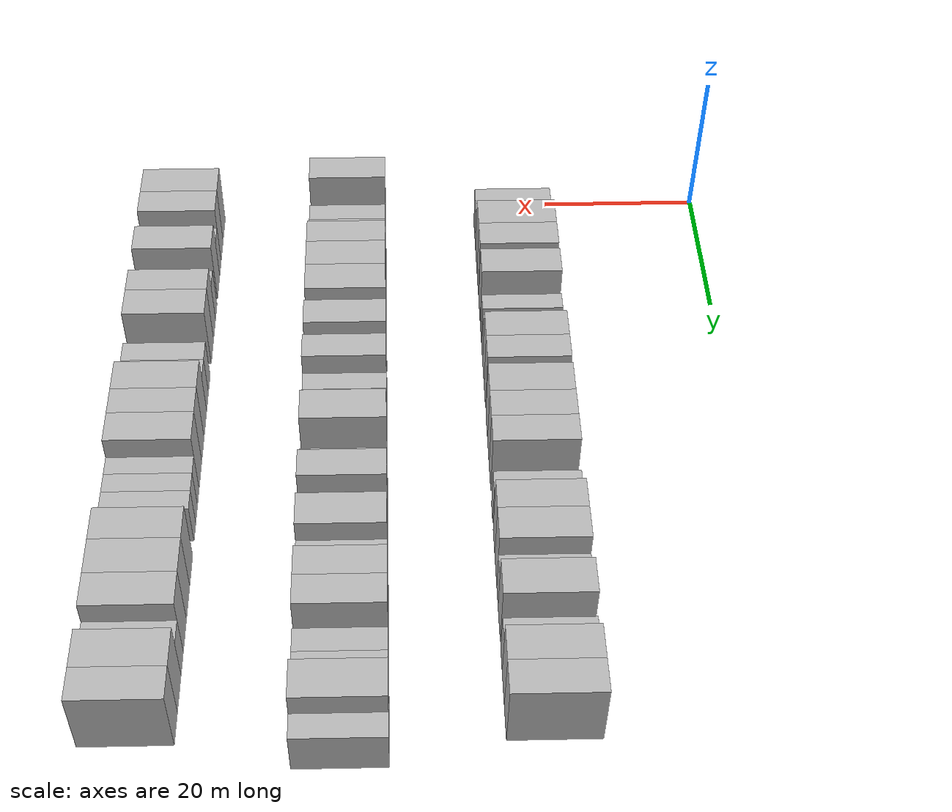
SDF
<sdf version="1.6">
 <world name="default">
  <model name="building_62">
   <static>1</static>
   <pose>25.0000 4.8385 0 0.000000 0.000000 0.000000</pose>
   <link name="link">
    <pose>0 0 3.00 0 0 0</pose>
    <collision name="collision"><geometry><box><size>10.0000 2.8597 6.0000</size></box></geometry></collision>
    <visual name="visual">
     <cast_shadows>0</cast_shadows>
     <geometry><box><size>10.0000 2.8597 6.0000</size></box></geometry>
     <material>
      <script>
       <uri>model://HANNAS_wall/materials/scripts</uri>
       <uri>model://HANNAS_wall/materials/textures</uri>
       <name>vrc/HANNAS_wall</name>
      </script>
     </material>
    </visual>
   </link>
  </model>
  <model name="building_63">
   <static>1</static>
   <pose>25.0000 7.7347 0 0.000000 0.000000 0.000000</pose>
   <link name="link">
    <pose>0 0 3.00 0 0 0</pose>
    <collision name="collision"><geometry><box><size>10.0000 2.9326 6.0000</size></box></geometry></collision>
    <visual name="visual">
     <cast_shadows>0</cast_shadows>
     <geometry><box><size>10.0000 2.9326 6.0000</size></box></geometry>
     <material>
      <script>
       <uri>model://HANNAS_wall/materials/scripts</uri>
       <uri>model://HANNAS_wall/materials/textures</uri>
       <name>vrc/HANNAS_wall</name>
      </script>
     </material>
    </visual>
   </link>
  </model>
  <model name="building_64">
   <static>1</static>
   <pose>25.0000 11.3584 0 0.000000 0.000000 0.000000</pose>
   <link name="link">
    <pose>0 0 4.50 0 0 0</pose>
    <collision name="collision"><geometry><box><size>10.0000 4.3148 9.0000</size></box></geometry></collision>
    <visual name="visual">
     <cast_shadows>0</cast_shadows>
     <geometry><box><size>10.0000 4.3148 9.0000</size></box></geometry>
     <material>
      <script>
       <uri>model://HANNAS_wall/materials/scripts</uri>
       <uri>model://HANNAS_wall/materials/textures</uri>
       <name>vrc/HANNAS_wall</name>
      </script>
     </material>
    </visual>
   </link>
  </model>
  <model name="building_65">
   <static>1</static>
   <pose>25.0000 15.4725 0 0.000000 0.000000 0.000000</pose>
   <link name="link">
    <pose>0 0 4.50 0 0 0</pose>
    <collision name="collision"><geometry><box><size>10.0000 3.9134 9.0000</size></box></geometry></collision>
    <visual name="visual">
     <cast_shadows>0</cast_shadows>
     <geometry><box><size>10.0000 3.9134 9.0000</size></box></geometry>
     <material>
      <script>
       <uri>model://HANNAS_wall/materials/scripts</uri>
       <uri>model://HANNAS_wall/materials/textures</uri>
       <name>vrc/HANNAS_wall</name>
      </script>
     </material>
    </visual>
   </link>
  </model>
  <model name="building_66">
   <static>1</static>
   <pose>25.0000 20.5150 0 0.000000 0.000000 0.000000</pose>
   <link name="link">
    <pose>0 0 4.50 0 0 0</pose>
    <collision name="collision"><geometry><box><size>10.0000 4.1715 9.0000</size></box></geometry></collision>
    <visual name="visual">
     <cast_shadows>0</cast_shadows>
     <geometry><box><size>10.0000 4.1715 9.0000</size></box></geometry>
     <material>
      <script>
       <uri>model://HANNAS_wall/materials/scripts</uri>
       <uri>model://HANNAS_wall/materials/textures</uri>
       <name>vrc/HANNAS_wall</name>
      </script>
     </material>
    </visual>
   </link>
  </model>
  <model name="building_67">
   <static>1</static>
   <pose>25.0000 24.8440 0 0.000000 0.000000 0.000000</pose>
   <link name="link">
    <pose>0 0 3.00 0 0 0</pose>
    <collision name="collision"><geometry><box><size>10.0000 2.4864 6.0000</size></box></geometry></collision>
    <visual name="visual">
     <cast_shadows>0</cast_shadows>
     <geometry><box><size>10.0000 2.4864 6.0000</size></box></geometry>
     <material>
      <script>
       <uri>model://HANNAS_wall/materials/scripts</uri>
       <uri>model://HANNAS_wall/materials/textures</uri>
       <name>vrc/HANNAS_wall</name>
      </script>
     </material>
    </visual>
   </link>
  </model>
  <model name="building_68">
   <static>1</static>
   <pose>25.0000 28.3277 0 0.000000 0.000000 0.000000</pose>
   <link name="link">
    <pose>0 0 3.00 0 0 0</pose>
    <collision name="collision"><geometry><box><size>10.0000 2.4811 6.0000</size></box></geometry></collision>
    <visual name="visual">
     <cast_shadows>0</cast_shadows>
     <geometry><box><size>10.0000 2.4811 6.0000</size></box></geometry>
     <material>
      <script>
       <uri>model://HANNAS_wall/materials/scripts</uri>
       <uri>model://HANNAS_wall/materials/textures</uri>
       <name>vrc/HANNAS_wall</name>
      </script>
     </material>
    </visual>
   </link>
  </model>
  <model name="building_69">
   <static>1</static>
   <pose>25.0000 31.5768 0 0.000000 0.000000 0.000000</pose>
   <link name="link">
    <pose>0 0 4.50 0 0 0</pose>
    <collision name="collision"><geometry><box><size>10.0000 4.0170 9.0000</size></box></geometry></collision>
    <visual name="visual">
     <cast_shadows>0</cast_shadows>
     <geometry><box><size>10.0000 4.0170 9.0000</size></box></geometry>
     <material>
      <script>
       <uri>model://HANNAS_wall/materials/scripts</uri>
       <uri>model://HANNAS_wall/materials/textures</uri>
       <name>vrc/HANNAS_wall</name>
      </script>
     </material>
    </visual>
   </link>
  </model>
  <model name="building_70">
   <static>1</static>
   <pose>25.0000 35.3910 0 0.000000 0.000000 0.000000</pose>
   <link name="link">
    <pose>0 0 4.50 0 0 0</pose>
    <collision name="collision"><geometry><box><size>10.0000 3.6114 9.0000</size></box></geometry></collision>
    <visual name="visual">
     <cast_shadows>0</cast_shadows>
     <geometry><box><size>10.0000 3.6114 9.0000</size></box></geometry>
     <material>
      <script>
       <uri>model://HANNAS_wall/materials/scripts</uri>
       <uri>model://HANNAS_wall/materials/textures</uri>
       <name>vrc/HANNAS_wall</name>
      </script>
     </material>
    </visual>
   </link>
  </model>
  <model name="building_71">
   <static>1</static>
   <pose>25.0000 40.3313 0 0.000000 0.000000 0.000000</pose>
   <link name="link">
    <pose>0 0 4.50 0 0 0</pose>
    <collision name="collision"><geometry><box><size>10.0000 4.2693 9.0000</size></box></geometry></collision>
    <visual name="visual">
     <cast_shadows>0</cast_shadows>
     <geometry><box><size>10.0000 4.2693 9.0000</size></box></geometry>
     <material>
      <script>
       <uri>model://HANNAS_wall/materials/scripts</uri>
       <uri>model://HANNAS_wall/materials/textures</uri>
       <name>vrc/HANNAS_wall</name>
      </script>
     </material>
    </visual>
   </link>
  </model>
  <model name="building_72">
   <static>1</static>
   <pose>25.0000 44.3819 0 0.000000 0.000000 0.000000</pose>
   <link name="link">
    <pose>0 0 4.50 0 0 0</pose>
    <collision name="collision"><geometry><box><size>10.0000 3.8319 9.0000</size></box></geometry></collision>
    <visual name="visual">
     <cast_shadows>0</cast_shadows>
     <geometry><box><size>10.0000 3.8319 9.0000</size></box></geometry>
     <material>
      <script>
       <uri>model://HANNAS_wall/materials/scripts</uri>
       <uri>model://HANNAS_wall/materials/textures</uri>
       <name>vrc/HANNAS_wall</name>
      </script>
     </material>
    </visual>
   </link>
  </model>
  <model name="building_73">
   <static>1</static>
   <pose>25.0000 48.1872 0 0.000000 0.000000 0.000000</pose>
   <link name="link">
    <pose>0 0 4.50 0 0 0</pose>
    <collision name="collision"><geometry><box><size>10.0000 3.7786 9.0000</size></box></geometry></collision>
    <visual name="visual">
     <cast_shadows>0</cast_shadows>
     <geometry><box><size>10.0000 3.7786 9.0000</size></box></geometry>
     <material>
      <script>
       <uri>model://HANNAS_wall/materials/scripts</uri>
       <uri>model://HANNAS_wall/materials/textures</uri>
       <name>vrc/HANNAS_wall</name>
      </script>
     </material>
    </visual>
   </link>
  </model>
  <model name="building_74">
   <static>1</static>
   <pose>25.0000 53.4099 0 0.000000 0.000000 0.000000</pose>
   <link name="link">
    <pose>0 0 3.00 0 0 0</pose>
    <collision name="collision"><geometry><box><size>10.0000 2.6668 6.0000</size></box></geometry></collision>
    <visual name="visual">
     <cast_shadows>0</cast_shadows>
     <geometry><box><size>10.0000 2.6668 6.0000</size></box></geometry>
     <material>
      <script>
       <uri>model://HANNAS_wall/materials/scripts</uri>
       <uri>model://HANNAS_wall/materials/textures</uri>
       <name>vrc/HANNAS_wall</name>
      </script>
     </material>
    </visual>
   </link>
  </model>
  <model name="building_75">
   <static>1</static>
   <pose>25.0000 57.6480 0 0.000000 0.000000 0.000000</pose>
   <link name="link">
    <pose>0 0 4.50 0 0 0</pose>
    <collision name="collision"><geometry><box><size>10.0000 3.8094 9.0000</size></box></geometry></collision>
    <visual name="visual">
     <cast_shadows>0</cast_shadows>
     <geometry><box><size>10.0000 3.8094 9.0000</size></box></geometry>
     <material>
      <script>
       <uri>model://HANNAS_wall/materials/scripts</uri>
       <uri>model://HANNAS_wall/materials/textures</uri>
       <name>vrc/HANNAS_wall</name>
      </script>
     </material>
    </visual>
   </link>
  </model>
  <model name="building_76">
   <static>1</static>
   <pose>25.0000 61.6300 0 0.000000 0.000000 0.000000</pose>
   <link name="link">
    <pose>0 0 4.50 0 0 0</pose>
    <collision name="collision"><geometry><box><size>10.0000 4.1546 9.0000</size></box></geometry></collision>
    <visual name="visual">
     <cast_shadows>0</cast_shadows>
     <geometry><box><size>10.0000 4.1546 9.0000</size></box></geometry>
     <material>
      <script>
       <uri>model://HANNAS_wall/materials/scripts</uri>
       <uri>model://HANNAS_wall/materials/textures</uri>
       <name>vrc/HANNAS_wall</name>
      </script>
     </material>
    </visual>
   </link>
  </model>
  <model name="building_77">
   <static>1</static>
   <pose>25.0000 65.0552 0 0.000000 0.000000 0.000000</pose>
   <link name="link">
    <pose>0 0 3.00 0 0 0</pose>
    <collision name="collision"><geometry><box><size>10.0000 2.6957 6.0000</size></box></geometry></collision>
    <visual name="visual">
     <cast_shadows>0</cast_shadows>
     <geometry><box><size>10.0000 2.6957 6.0000</size></box></geometry>
     <material>
      <script>
       <uri>model://HANNAS_wall/materials/scripts</uri>
       <uri>model://HANNAS_wall/materials/textures</uri>
       <name>vrc/HANNAS_wall</name>
      </script>
     </material>
    </visual>
   </link>
  </model>
  <model name="building_78">
   <static>1</static>
   <pose>25.0000 68.6142 0 0.000000 0.000000 0.000000</pose>
   <link name="link">
    <pose>0 0 4.50 0 0 0</pose>
    <collision name="collision"><geometry><box><size>10.0000 4.4223 9.0000</size></box></geometry></collision>
    <visual name="visual">
     <cast_shadows>0</cast_shadows>
     <geometry><box><size>10.0000 4.4223 9.0000</size></box></geometry>
     <material>
      <script>
       <uri>model://HANNAS_wall/materials/scripts</uri>
       <uri>model://HANNAS_wall/materials/textures</uri>
       <name>vrc/HANNAS_wall</name>
      </script>
     </material>
    </visual>
   </link>
  </model>
  <model name="building_79">
   <static>1</static>
   <pose>25.0000 73.2678 0 0.000000 0.000000 0.000000</pose>
   <link name="link">
    <pose>0 0 3.00 0 0 0</pose>
    <collision name="collision"><geometry><box><size>10.0000 2.8849 6.0000</size></box></geometry></collision>
    <visual name="visual">
     <cast_shadows>0</cast_shadows>
     <geometry><box><size>10.0000 2.8849 6.0000</size></box></geometry>
     <material>
      <script>
       <uri>model://HANNAS_wall/materials/scripts</uri>
       <uri>model://HANNAS_wall/materials/textures</uri>
       <name>vrc/HANNAS_wall</name>
      </script>
     </material>
    </visual>
   </link>
  </model>
  <model name="building_80">
   <static>1</static>
   <pose>25.0000 76.7504 0 0.000000 0.000000 0.000000</pose>
   <link name="link">
    <pose>0 0 4.50 0 0 0</pose>
    <collision name="collision"><geometry><box><size>10.0000 4.0803 9.0000</size></box></geometry></collision>
    <visual name="visual">
     <cast_shadows>0</cast_shadows>
     <geometry><box><size>10.0000 4.0803 9.0000</size></box></geometry>
     <material>
      <script>
       <uri>model://HANNAS_wall/materials/scripts</uri>
       <uri>model://HANNAS_wall/materials/textures</uri>
       <name>vrc/HANNAS_wall</name>
      </script>
     </material>
    </visual>
   </link>
  </model>
  <model name="building_81">
   <static>1</static>
   <pose>25.0000 80.7810 0 0.000000 0.000000 0.000000</pose>
   <link name="link">
    <pose>0 0 4.50 0 0 0</pose>
    <collision name="collision"><geometry><box><size>10.0000 3.9807 9.0000</size></box></geometry></collision>
    <visual name="visual">
     <cast_shadows>0</cast_shadows>
     <geometry><box><size>10.0000 3.9807 9.0000</size></box></geometry>
     <material>
      <script>
       <uri>model://HANNAS_wall/materials/scripts</uri>
       <uri>model://HANNAS_wall/materials/textures</uri>
       <name>vrc/HANNAS_wall</name>
      </script>
     </material>
    </visual>
   </link>
  </model>
  <model name="building_191">
   <static>1</static>
   <pose>47.0000 2.1717 0 0.000000 0.000000 0.000000</pose>
   <link name="link">
    <pose>0 0 4.50 0 0 0</pose>
    <collision name="collision"><geometry><box><size>10.0000 4.1198 9.0000</size></box></geometry></collision>
    <visual name="visual">
     <cast_shadows>0</cast_shadows>
     <geometry><box><size>10.0000 4.1198 9.0000</size></box></geometry>
     <material>
      <script>
       <uri>model://HANNAS_wall/materials/scripts</uri>
       <uri>model://HANNAS_wall/materials/textures</uri>
       <name>vrc/HANNAS_wall</name>
      </script>
     </material>
    </visual>
   </link>
  </model>
  <model name="building_192">
   <static>1</static>
   <pose>47.0000 7.6280 0 0.000000 0.000000 0.000000</pose>
   <link name="link">
    <pose>0 0 3.00 0 0 0</pose>
    <collision name="collision"><geometry><box><size>10.0000 2.7928 6.0000</size></box></geometry></collision>
    <visual name="visual">
     <cast_shadows>0</cast_shadows>
     <geometry><box><size>10.0000 2.7928 6.0000</size></box></geometry>
     <material>
      <script>
       <uri>model://HANNAS_wall/materials/scripts</uri>
       <uri>model://HANNAS_wall/materials/textures</uri>
       <name>vrc/HANNAS_wall</name>
      </script>
     </material>
    </visual>
   </link>
  </model>
  <model name="building_193">
   <static>1</static>
   <pose>47.0000 10.3833 0 0.000000 0.000000 0.000000</pose>
   <link name="link">
    <pose>0 0 3.00 0 0 0</pose>
    <collision name="collision"><geometry><box><size>10.0000 2.7179 6.0000</size></box></geometry></collision>
    <visual name="visual">
     <cast_shadows>0</cast_shadows>
     <geometry><box><size>10.0000 2.7179 6.0000</size></box></geometry>
     <material>
      <script>
       <uri>model://HANNAS_wall/materials/scripts</uri>
       <uri>model://HANNAS_wall/materials/textures</uri>
       <name>vrc/HANNAS_wall</name>
      </script>
     </material>
    </visual>
   </link>
  </model>
  <model name="building_194">
   <static>1</static>
   <pose>47.0000 14.6315 0 0.000000 0.000000 0.000000</pose>
   <link name="link">
    <pose>0 0 4.50 0 0 0</pose>
    <collision name="collision"><geometry><box><size>10.0000 3.7785 9.0000</size></box></geometry></collision>
    <visual name="visual">
     <cast_shadows>0</cast_shadows>
     <geometry><box><size>10.0000 3.7785 9.0000</size></box></geometry>
     <material>
      <script>
       <uri>model://HANNAS_wall/materials/scripts</uri>
       <uri>model://HANNAS_wall/materials/textures</uri>
       <name>vrc/HANNAS_wall</name>
      </script>
     </material>
    </visual>
   </link>
  </model>
  <model name="building_195">
   <static>1</static>
   <pose>47.0000 18.6408 0 0.000000 0.000000 0.000000</pose>
   <link name="link">
    <pose>0 0 4.50 0 0 0</pose>
    <collision name="collision"><geometry><box><size>10.0000 4.2400 9.0000</size></box></geometry></collision>
    <visual name="visual">
     <cast_shadows>0</cast_shadows>
     <geometry><box><size>10.0000 4.2400 9.0000</size></box></geometry>
     <material>
      <script>
       <uri>model://HANNAS_wall/materials/scripts</uri>
       <uri>model://HANNAS_wall/materials/textures</uri>
       <name>vrc/HANNAS_wall</name>
      </script>
     </material>
    </visual>
   </link>
  </model>
  <model name="building_196">
   <static>1</static>
   <pose>47.0000 22.9386 0 0.000000 0.000000 0.000000</pose>
   <link name="link">
    <pose>0 0 4.50 0 0 0</pose>
    <collision name="collision"><geometry><box><size>10.0000 4.3556 9.0000</size></box></geometry></collision>
    <visual name="visual">
     <cast_shadows>0</cast_shadows>
     <geometry><box><size>10.0000 4.3556 9.0000</size></box></geometry>
     <material>
      <script>
       <uri>model://HANNAS_wall/materials/scripts</uri>
       <uri>model://HANNAS_wall/materials/textures</uri>
       <name>vrc/HANNAS_wall</name>
      </script>
     </material>
    </visual>
   </link>
  </model>
  <model name="building_197">
   <static>1</static>
   <pose>47.0000 29.0506 0 0.000000 0.000000 0.000000</pose>
   <link name="link">
    <pose>0 0 4.50 0 0 0</pose>
    <collision name="collision"><geometry><box><size>10.0000 3.8685 9.0000</size></box></geometry></collision>
    <visual name="visual">
     <cast_shadows>0</cast_shadows>
     <geometry><box><size>10.0000 3.8685 9.0000</size></box></geometry>
     <material>
      <script>
       <uri>model://HANNAS_wall/materials/scripts</uri>
       <uri>model://HANNAS_wall/materials/textures</uri>
       <name>vrc/HANNAS_wall</name>
      </script>
     </material>
    </visual>
   </link>
  </model>
  <model name="building_198">
   <static>1</static>
   <pose>47.0000 34.7867 0 0.000000 0.000000 0.000000</pose>
   <link name="link">
    <pose>0 0 4.50 0 0 0</pose>
    <collision name="collision"><geometry><box><size>10.0000 3.6037 9.0000</size></box></geometry></collision>
    <visual name="visual">
     <cast_shadows>0</cast_shadows>
     <geometry><box><size>10.0000 3.6037 9.0000</size></box></geometry>
     <material>
      <script>
       <uri>model://HANNAS_wall/materials/scripts</uri>
       <uri>model://HANNAS_wall/materials/textures</uri>
       <name>vrc/HANNAS_wall</name>
      </script>
     </material>
    </visual>
   </link>
  </model>
  <model name="building_199">
   <static>1</static>
   <pose>47.0000 37.8655 0 0.000000 0.000000 0.000000</pose>
   <link name="link">
    <pose>0 0 3.00 0 0 0</pose>
    <collision name="collision"><geometry><box><size>10.0000 2.5539 6.0000</size></box></geometry></collision>
    <visual name="visual">
     <cast_shadows>0</cast_shadows>
     <geometry><box><size>10.0000 2.5539 6.0000</size></box></geometry>
     <material>
      <script>
       <uri>model://HANNAS_wall/materials/scripts</uri>
       <uri>model://HANNAS_wall/materials/textures</uri>
       <name>vrc/HANNAS_wall</name>
      </script>
     </material>
    </visual>
   </link>
  </model>
  <model name="building_200">
   <static>1</static>
   <pose>47.0000 40.5393 0 0.000000 0.000000 0.000000</pose>
   <link name="link">
    <pose>0 0 3.00 0 0 0</pose>
    <collision name="collision"><geometry><box><size>10.0000 2.7936 6.0000</size></box></geometry></collision>
    <visual name="visual">
     <cast_shadows>0</cast_shadows>
     <geometry><box><size>10.0000 2.7936 6.0000</size></box></geometry>
     <material>
      <script>
       <uri>model://HANNAS_wall/materials/scripts</uri>
       <uri>model://HANNAS_wall/materials/textures</uri>
       <name>vrc/HANNAS_wall</name>
      </script>
     </material>
    </visual>
   </link>
  </model>
  <model name="building_201">
   <static>1</static>
   <pose>47.0000 44.1117 0 0.000000 0.000000 0.000000</pose>
   <link name="link">
    <pose>0 0 4.50 0 0 0</pose>
    <collision name="collision"><geometry><box><size>10.0000 4.3513 9.0000</size></box></geometry></collision>
    <visual name="visual">
     <cast_shadows>0</cast_shadows>
     <geometry><box><size>10.0000 4.3513 9.0000</size></box></geometry>
     <material>
      <script>
       <uri>model://HANNAS_wall/materials/scripts</uri>
       <uri>model://HANNAS_wall/materials/textures</uri>
       <name>vrc/HANNAS_wall</name>
      </script>
     </material>
    </visual>
   </link>
  </model>
  <model name="building_202">
   <static>1</static>
   <pose>47.0000 49.6158 0 0.000000 0.000000 0.000000</pose>
   <link name="link">
    <pose>0 0 3.00 0 0 0</pose>
    <collision name="collision"><geometry><box><size>10.0000 2.6568 6.0000</size></box></geometry></collision>
    <visual name="visual">
     <cast_shadows>0</cast_shadows>
     <geometry><box><size>10.0000 2.6568 6.0000</size></box></geometry>
     <material>
      <script>
       <uri>model://HANNAS_wall/materials/scripts</uri>
       <uri>model://HANNAS_wall/materials/textures</uri>
       <name>vrc/HANNAS_wall</name>
      </script>
     </material>
    </visual>
   </link>
  </model>
  <model name="building_203">
   <static>1</static>
   <pose>47.0000 52.8092 0 0.000000 0.000000 0.000000</pose>
   <link name="link">
    <pose>0 0 4.50 0 0 0</pose>
    <collision name="collision"><geometry><box><size>10.0000 3.7300 9.0000</size></box></geometry></collision>
    <visual name="visual">
     <cast_shadows>0</cast_shadows>
     <geometry><box><size>10.0000 3.7300 9.0000</size></box></geometry>
     <material>
      <script>
       <uri>model://HANNAS_wall/materials/scripts</uri>
       <uri>model://HANNAS_wall/materials/textures</uri>
       <name>vrc/HANNAS_wall</name>
      </script>
     </material>
    </visual>
   </link>
  </model>
  <model name="building_204">
   <static>1</static>
   <pose>47.0000 55.8914 0 0.000000 0.000000 0.000000</pose>
   <link name="link">
    <pose>0 0 3.00 0 0 0</pose>
    <collision name="collision"><geometry><box><size>10.0000 2.4343 6.0000</size></box></geometry></collision>
    <visual name="visual">
     <cast_shadows>0</cast_shadows>
     <geometry><box><size>10.0000 2.4343 6.0000</size></box></geometry>
     <material>
      <script>
       <uri>model://HANNAS_wall/materials/scripts</uri>
       <uri>model://HANNAS_wall/materials/textures</uri>
       <name>vrc/HANNAS_wall</name>
      </script>
     </material>
    </visual>
   </link>
  </model>
  <model name="building_205">
   <static>1</static>
   <pose>47.0000 59.2299 0 0.000000 0.000000 0.000000</pose>
   <link name="link">
    <pose>0 0 4.50 0 0 0</pose>
    <collision name="collision"><geometry><box><size>10.0000 4.2428 9.0000</size></box></geometry></collision>
    <visual name="visual">
     <cast_shadows>0</cast_shadows>
     <geometry><box><size>10.0000 4.2428 9.0000</size></box></geometry>
     <material>
      <script>
       <uri>model://HANNAS_wall/materials/scripts</uri>
       <uri>model://HANNAS_wall/materials/textures</uri>
       <name>vrc/HANNAS_wall</name>
      </script>
     </material>
    </visual>
   </link>
  </model>
  <model name="building_206">
   <static>1</static>
   <pose>47.0000 62.8167 0 0.000000 0.000000 0.000000</pose>
   <link name="link">
    <pose>0 0 3.00 0 0 0</pose>
    <collision name="collision"><geometry><box><size>10.0000 2.9309 6.0000</size></box></geometry></collision>
    <visual name="visual">
     <cast_shadows>0</cast_shadows>
     <geometry><box><size>10.0000 2.9309 6.0000</size></box></geometry>
     <material>
      <script>
       <uri>model://HANNAS_wall/materials/scripts</uri>
       <uri>model://HANNAS_wall/materials/textures</uri>
       <name>vrc/HANNAS_wall</name>
      </script>
     </material>
    </visual>
   </link>
  </model>
  <model name="building_207">
   <static>1</static>
   <pose>47.0000 66.1249 0 0.000000 0.000000 0.000000</pose>
   <link name="link">
    <pose>0 0 4.50 0 0 0</pose>
    <collision name="collision"><geometry><box><size>10.0000 3.6854 9.0000</size></box></geometry></collision>
    <visual name="visual">
     <cast_shadows>0</cast_shadows>
     <geometry><box><size>10.0000 3.6854 9.0000</size></box></geometry>
     <material>
      <script>
       <uri>model://HANNAS_wall/materials/scripts</uri>
       <uri>model://HANNAS_wall/materials/textures</uri>
       <name>vrc/HANNAS_wall</name>
      </script>
     </material>
    </visual>
   </link>
  </model>
  <model name="building_208">
   <static>1</static>
   <pose>47.0000 69.8139 0 0.000000 0.000000 0.000000</pose>
   <link name="link">
    <pose>0 0 4.50 0 0 0</pose>
    <collision name="collision"><geometry><box><size>10.0000 3.6927 9.0000</size></box></geometry></collision>
    <visual name="visual">
     <cast_shadows>0</cast_shadows>
     <geometry><box><size>10.0000 3.6927 9.0000</size></box></geometry>
     <material>
      <script>
       <uri>model://HANNAS_wall/materials/scripts</uri>
       <uri>model://HANNAS_wall/materials/textures</uri>
       <name>vrc/HANNAS_wall</name>
      </script>
     </material>
    </visual>
   </link>
  </model>
  <model name="building_209">
   <static>1</static>
   <pose>47.0000 74.0758 0 0.000000 0.000000 0.000000</pose>
   <link name="link">
    <pose>0 0 3.00 0 0 0</pose>
    <collision name="collision"><geometry><box><size>10.0000 2.8311 6.0000</size></box></geometry></collision>
    <visual name="visual">
     <cast_shadows>0</cast_shadows>
     <geometry><box><size>10.0000 2.8311 6.0000</size></box></geometry>
     <material>
      <script>
       <uri>model://HANNAS_wall/materials/scripts</uri>
       <uri>model://HANNAS_wall/materials/textures</uri>
       <name>vrc/HANNAS_wall</name>
      </script>
     </material>
    </visual>
   </link>
  </model>
  <model name="building_210">
   <static>1</static>
   <pose>47.0000 76.8986 0 0.000000 0.000000 0.000000</pose>
   <link name="link">
    <pose>0 0 3.00 0 0 0</pose>
    <collision name="collision"><geometry><box><size>10.0000 2.8146 6.0000</size></box></geometry></collision>
    <visual name="visual">
     <cast_shadows>0</cast_shadows>
     <geometry><box><size>10.0000 2.8146 6.0000</size></box></geometry>
     <material>
      <script>
       <uri>model://HANNAS_wall/materials/scripts</uri>
       <uri>model://HANNAS_wall/materials/textures</uri>
       <name>vrc/HANNAS_wall</name>
      </script>
     </material>
    </visual>
   </link>
  </model>
  <model name="building_211">
   <static>1</static>
   <pose>47.0000 80.5304 0 0.000000 0.000000 0.000000</pose>
   <link name="link">
    <pose>0 0 4.50 0 0 0</pose>
    <collision name="collision"><geometry><box><size>10.0000 4.4489 9.0000</size></box></geometry></collision>
    <visual name="visual">
     <cast_shadows>0</cast_shadows>
     <geometry><box><size>10.0000 4.4489 9.0000</size></box></geometry>
     <material>
      <script>
       <uri>model://HANNAS_wall/materials/scripts</uri>
       <uri>model://HANNAS_wall/materials/textures</uri>
       <name>vrc/HANNAS_wall</name>
      </script>
     </material>
    </visual>
   </link>
  </model>
  <model name="building_212">
   <static>1</static>
   <pose>47.0000 84.1670 0 0.000000 0.000000 0.000000</pose>
   <link name="link">
    <pose>0 0 3.00 0 0 0</pose>
    <collision name="collision"><geometry><box><size>10.0000 2.8242 6.0000</size></box></geometry></collision>
    <visual name="visual">
     <cast_shadows>0</cast_shadows>
     <geometry><box><size>10.0000 2.8242 6.0000</size></box></geometry>
     <material>
      <script>
       <uri>model://HANNAS_wall/materials/scripts</uri>
       <uri>model://HANNAS_wall/materials/textures</uri>
       <name>vrc/HANNAS_wall</name>
      </script>
     </material>
    </visual>
   </link>
  </model>
  <model name="building_320">
   <static>1</static>
   <pose>69.0000 4.2465 0 0.000000 0.000000 0.000000</pose>
   <link name="link">
    <pose>0 0 4.50 0 0 0</pose>
    <collision name="collision"><geometry><box><size>10.0000 4.4925 9.0000</size></box></geometry></collision>
    <visual name="visual">
     <cast_shadows>0</cast_shadows>
     <geometry><box><size>10.0000 4.4925 9.0000</size></box></geometry>
     <material>
      <script>
       <uri>model://HANNAS_wall/materials/scripts</uri>
       <uri>model://HANNAS_wall/materials/textures</uri>
       <name>vrc/HANNAS_wall</name>
      </script>
     </material>
    </visual>
   </link>
  </model>
  <model name="building_321">
   <static>1</static>
   <pose>69.0000 8.4631 0 0.000000 0.000000 0.000000</pose>
   <link name="link">
    <pose>0 0 4.50 0 0 0</pose>
    <collision name="collision"><geometry><box><size>10.0000 3.9407 9.0000</size></box></geometry></collision>
    <visual name="visual">
     <cast_shadows>0</cast_shadows>
     <geometry><box><size>10.0000 3.9407 9.0000</size></box></geometry>
     <material>
      <script>
       <uri>model://HANNAS_wall/materials/scripts</uri>
       <uri>model://HANNAS_wall/materials/textures</uri>
       <name>vrc/HANNAS_wall</name>
      </script>
     </material>
    </visual>
   </link>
  </model>
  <model name="building_322">
   <static>1</static>
   <pose>69.0000 11.8547 0 0.000000 0.000000 0.000000</pose>
   <link name="link">
    <pose>0 0 3.00 0 0 0</pose>
    <collision name="collision"><geometry><box><size>10.0000 2.8426 6.0000</size></box></geometry></collision>
    <visual name="visual">
     <cast_shadows>0</cast_shadows>
     <geometry><box><size>10.0000 2.8426 6.0000</size></box></geometry>
     <material>
      <script>
       <uri>model://HANNAS_wall/materials/scripts</uri>
       <uri>model://HANNAS_wall/materials/textures</uri>
       <name>vrc/HANNAS_wall</name>
      </script>
     </material>
    </visual>
   </link>
  </model>
  <model name="building_323">
   <static>1</static>
   <pose>69.0000 15.4093 0 0.000000 0.000000 0.000000</pose>
   <link name="link">
    <pose>0 0 4.50 0 0 0</pose>
    <collision name="collision"><geometry><box><size>10.0000 4.2666 9.0000</size></box></geometry></collision>
    <visual name="visual">
     <cast_shadows>0</cast_shadows>
     <geometry><box><size>10.0000 4.2666 9.0000</size></box></geometry>
     <material>
      <script>
       <uri>model://HANNAS_wall/materials/scripts</uri>
       <uri>model://HANNAS_wall/materials/textures</uri>
       <name>vrc/HANNAS_wall</name>
      </script>
     </material>
    </visual>
   </link>
  </model>
  <model name="building_324">
   <static>1</static>
   <pose>69.0000 19.9309 0 0.000000 0.000000 0.000000</pose>
   <link name="link">
    <pose>0 0 3.00 0 0 0</pose>
    <collision name="collision"><geometry><box><size>10.0000 2.7767 6.0000</size></box></geometry></collision>
    <visual name="visual">
     <cast_shadows>0</cast_shadows>
     <geometry><box><size>10.0000 2.7767 6.0000</size></box></geometry>
     <material>
      <script>
       <uri>model://HANNAS_wall/materials/scripts</uri>
       <uri>model://HANNAS_wall/materials/textures</uri>
       <name>vrc/HANNAS_wall</name>
      </script>
     </material>
    </visual>
   </link>
  </model>
  <model name="building_325">
   <static>1</static>
   <pose>69.0000 23.1203 0 0.000000 0.000000 0.000000</pose>
   <link name="link">
    <pose>0 0 4.50 0 0 0</pose>
    <collision name="collision"><geometry><box><size>10.0000 3.6022 9.0000</size></box></geometry></collision>
    <visual name="visual">
     <cast_shadows>0</cast_shadows>
     <geometry><box><size>10.0000 3.6022 9.0000</size></box></geometry>
     <material>
      <script>
       <uri>model://HANNAS_wall/materials/scripts</uri>
       <uri>model://HANNAS_wall/materials/textures</uri>
       <name>vrc/HANNAS_wall</name>
      </script>
     </material>
    </visual>
   </link>
  </model>
  <model name="building_326">
   <static>1</static>
   <pose>69.0000 27.0147 0 0.000000 0.000000 0.000000</pose>
   <link name="link">
    <pose>0 0 4.50 0 0 0</pose>
    <collision name="collision"><geometry><box><size>10.0000 4.1866 9.0000</size></box></geometry></collision>
    <visual name="visual">
     <cast_shadows>0</cast_shadows>
     <geometry><box><size>10.0000 4.1866 9.0000</size></box></geometry>
     <material>
      <script>
       <uri>model://HANNAS_wall/materials/scripts</uri>
       <uri>model://HANNAS_wall/materials/textures</uri>
       <name>vrc/HANNAS_wall</name>
      </script>
     </material>
    </visual>
   </link>
  </model>
  <model name="building_327">
   <static>1</static>
   <pose>69.0000 32.5607 0 0.000000 0.000000 0.000000</pose>
   <link name="link">
    <pose>0 0 3.00 0 0 0</pose>
    <collision name="collision"><geometry><box><size>10.0000 2.9054 6.0000</size></box></geometry></collision>
    <visual name="visual">
     <cast_shadows>0</cast_shadows>
     <geometry><box><size>10.0000 2.9054 6.0000</size></box></geometry>
     <material>
      <script>
       <uri>model://HANNAS_wall/materials/scripts</uri>
       <uri>model://HANNAS_wall/materials/textures</uri>
       <name>vrc/HANNAS_wall</name>
      </script>
     </material>
    </visual>
   </link>
  </model>
  <model name="building_328">
   <static>1</static>
   <pose>69.0000 35.5042 0 0.000000 0.000000 0.000000</pose>
   <link name="link">
    <pose>0 0 3.00 0 0 0</pose>
    <collision name="collision"><geometry><box><size>10.0000 2.9816 6.0000</size></box></geometry></collision>
    <visual name="visual">
     <cast_shadows>0</cast_shadows>
     <geometry><box><size>10.0000 2.9816 6.0000</size></box></geometry>
     <material>
      <script>
       <uri>model://HANNAS_wall/materials/scripts</uri>
       <uri>model://HANNAS_wall/materials/textures</uri>
       <name>vrc/HANNAS_wall</name>
      </script>
     </material>
    </visual>
   </link>
  </model>
  <model name="building_329">
   <static>1</static>
   <pose>69.0000 39.1407 0 0.000000 0.000000 0.000000</pose>
   <link name="link">
    <pose>0 0 4.50 0 0 0</pose>
    <collision name="collision"><geometry><box><size>10.0000 4.2915 9.0000</size></box></geometry></collision>
    <visual name="visual">
     <cast_shadows>0</cast_shadows>
     <geometry><box><size>10.0000 4.2915 9.0000</size></box></geometry>
     <material>
      <script>
       <uri>model://HANNAS_wall/materials/scripts</uri>
       <uri>model://HANNAS_wall/materials/textures</uri>
       <name>vrc/HANNAS_wall</name>
      </script>
     </material>
    </visual>
   </link>
  </model>
  <model name="building_330">
   <static>1</static>
   <pose>69.0000 43.1422 0 0.000000 0.000000 0.000000</pose>
   <link name="link">
    <pose>0 0 4.50 0 0 0</pose>
    <collision name="collision"><geometry><box><size>10.0000 3.7114 9.0000</size></box></geometry></collision>
    <visual name="visual">
     <cast_shadows>0</cast_shadows>
     <geometry><box><size>10.0000 3.7114 9.0000</size></box></geometry>
     <material>
      <script>
       <uri>model://HANNAS_wall/materials/scripts</uri>
       <uri>model://HANNAS_wall/materials/textures</uri>
       <name>vrc/HANNAS_wall</name>
      </script>
     </material>
    </visual>
   </link>
  </model>
  <model name="building_331">
   <static>1</static>
   <pose>69.0000 47.0799 0 0.000000 0.000000 0.000000</pose>
   <link name="link">
    <pose>0 0 4.50 0 0 0</pose>
    <collision name="collision"><geometry><box><size>10.0000 4.1640 9.0000</size></box></geometry></collision>
    <visual name="visual">
     <cast_shadows>0</cast_shadows>
     <geometry><box><size>10.0000 4.1640 9.0000</size></box></geometry>
     <material>
      <script>
       <uri>model://HANNAS_wall/materials/scripts</uri>
       <uri>model://HANNAS_wall/materials/textures</uri>
       <name>vrc/HANNAS_wall</name>
      </script>
     </material>
    </visual>
   </link>
  </model>
  <model name="building_332">
   <static>1</static>
   <pose>69.0000 50.3823 0 0.000000 0.000000 0.000000</pose>
   <link name="link">
    <pose>0 0 3.00 0 0 0</pose>
    <collision name="collision"><geometry><box><size>10.0000 2.4409 6.0000</size></box></geometry></collision>
    <visual name="visual">
     <cast_shadows>0</cast_shadows>
     <geometry><box><size>10.0000 2.4409 6.0000</size></box></geometry>
     <material>
      <script>
       <uri>model://HANNAS_wall/materials/scripts</uri>
       <uri>model://HANNAS_wall/materials/textures</uri>
       <name>vrc/HANNAS_wall</name>
      </script>
     </material>
    </visual>
   </link>
  </model>
  <model name="building_333">
   <static>1</static>
   <pose>69.0000 52.8768 0 0.000000 0.000000 0.000000</pose>
   <link name="link">
    <pose>0 0 3.00 0 0 0</pose>
    <collision name="collision"><geometry><box><size>10.0000 2.5479 6.0000</size></box></geometry></collision>
    <visual name="visual">
     <cast_shadows>0</cast_shadows>
     <geometry><box><size>10.0000 2.5479 6.0000</size></box></geometry>
     <material>
      <script>
       <uri>model://HANNAS_wall/materials/scripts</uri>
       <uri>model://HANNAS_wall/materials/textures</uri>
       <name>vrc/HANNAS_wall</name>
      </script>
     </material>
    </visual>
   </link>
  </model>
  <model name="building_334">
   <static>1</static>
   <pose>69.0000 55.4375 0 0.000000 0.000000 0.000000</pose>
   <link name="link">
    <pose>0 0 3.00 0 0 0</pose>
    <collision name="collision"><geometry><box><size>10.0000 2.5736 6.0000</size></box></geometry></collision>
    <visual name="visual">
     <cast_shadows>0</cast_shadows>
     <geometry><box><size>10.0000 2.5736 6.0000</size></box></geometry>
     <material>
      <script>
       <uri>model://HANNAS_wall/materials/scripts</uri>
       <uri>model://HANNAS_wall/materials/textures</uri>
       <name>vrc/HANNAS_wall</name>
      </script>
     </material>
    </visual>
   </link>
  </model>
  <model name="building_335">
   <static>1</static>
   <pose>69.0000 60.8085 0 0.000000 0.000000 0.000000</pose>
   <link name="link">
    <pose>0 0 4.50 0 0 0</pose>
    <collision name="collision"><geometry><box><size>10.0000 4.1683 9.0000</size></box></geometry></collision>
    <visual name="visual">
     <cast_shadows>0</cast_shadows>
     <geometry><box><size>10.0000 4.1683 9.0000</size></box></geometry>
     <material>
      <script>
       <uri>model://HANNAS_wall/materials/scripts</uri>
       <uri>model://HANNAS_wall/materials/textures</uri>
       <name>vrc/HANNAS_wall</name>
      </script>
     </material>
    </visual>
   </link>
  </model>
  <model name="building_336">
   <static>1</static>
   <pose>69.0000 65.0945 0 0.000000 0.000000 0.000000</pose>
   <link name="link">
    <pose>0 0 4.50 0 0 0</pose>
    <collision name="collision"><geometry><box><size>10.0000 4.4037 9.0000</size></box></geometry></collision>
    <visual name="visual">
     <cast_shadows>0</cast_shadows>
     <geometry><box><size>10.0000 4.4037 9.0000</size></box></geometry>
     <material>
      <script>
       <uri>model://HANNAS_wall/materials/scripts</uri>
       <uri>model://HANNAS_wall/materials/textures</uri>
       <name>vrc/HANNAS_wall</name>
      </script>
     </material>
    </visual>
   </link>
  </model>
  <model name="building_337">
   <static>1</static>
   <pose>69.0000 69.3694 0 0.000000 0.000000 0.000000</pose>
   <link name="link">
    <pose>0 0 4.50 0 0 0</pose>
    <collision name="collision"><geometry><box><size>10.0000 4.1460 9.0000</size></box></geometry></collision>
    <visual name="visual">
     <cast_shadows>0</cast_shadows>
     <geometry><box><size>10.0000 4.1460 9.0000</size></box></geometry>
     <material>
      <script>
       <uri>model://HANNAS_wall/materials/scripts</uri>
       <uri>model://HANNAS_wall/materials/textures</uri>
       <name>vrc/HANNAS_wall</name>
      </script>
     </material>
    </visual>
   </link>
  </model>
  <model name="building_338">
   <static>1</static>
   <pose>69.0000 72.8863 0 0.000000 0.000000 0.000000</pose>
   <link name="link">
    <pose>0 0 3.00 0 0 0</pose>
    <collision name="collision"><geometry><box><size>10.0000 2.8878 6.0000</size></box></geometry></collision>
    <visual name="visual">
     <cast_shadows>0</cast_shadows>
     <geometry><box><size>10.0000 2.8878 6.0000</size></box></geometry>
     <material>
      <script>
       <uri>model://HANNAS_wall/materials/scripts</uri>
       <uri>model://HANNAS_wall/materials/textures</uri>
       <name>vrc/HANNAS_wall</name>
      </script>
     </material>
    </visual>
   </link>
  </model>
  <model name="building_339">
   <static>1</static>
   <pose>69.0000 76.5658 0 0.000000 0.000000 0.000000</pose>
   <link name="link">
    <pose>0 0 4.50 0 0 0</pose>
    <collision name="collision"><geometry><box><size>10.0000 4.4712 9.0000</size></box></geometry></collision>
    <visual name="visual">
     <cast_shadows>0</cast_shadows>
     <geometry><box><size>10.0000 4.4712 9.0000</size></box></geometry>
     <material>
      <script>
       <uri>model://HANNAS_wall/materials/scripts</uri>
       <uri>model://HANNAS_wall/materials/textures</uri>
       <name>vrc/HANNAS_wall</name>
      </script>
     </material>
    </visual>
   </link>
  </model>
  <model name="building_340">
   <static>1</static>
   <pose>69.0000 80.7184 0 0.000000 0.000000 0.000000</pose>
   <link name="link">
    <pose>0 0 4.50 0 0 0</pose>
    <collision name="collision"><geometry><box><size>10.0000 3.8339 9.0000</size></box></geometry></collision>
    <visual name="visual">
     <cast_shadows>0</cast_shadows>
     <geometry><box><size>10.0000 3.8339 9.0000</size></box></geometry>
     <material>
      <script>
       <uri>model://HANNAS_wall/materials/scripts</uri>
       <uri>model://HANNAS_wall/materials/textures</uri>
       <name>vrc/HANNAS_wall</name>
      </script>
     </material>
    </visual>
   </link>
  </model>
 </world>
</sdf>
